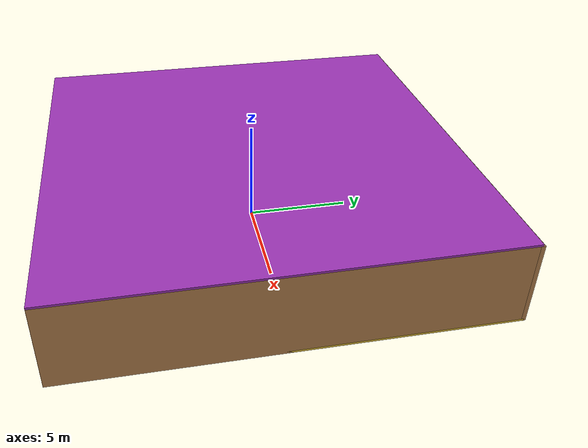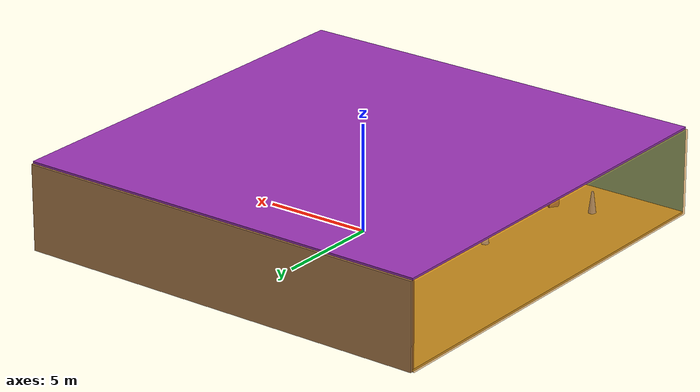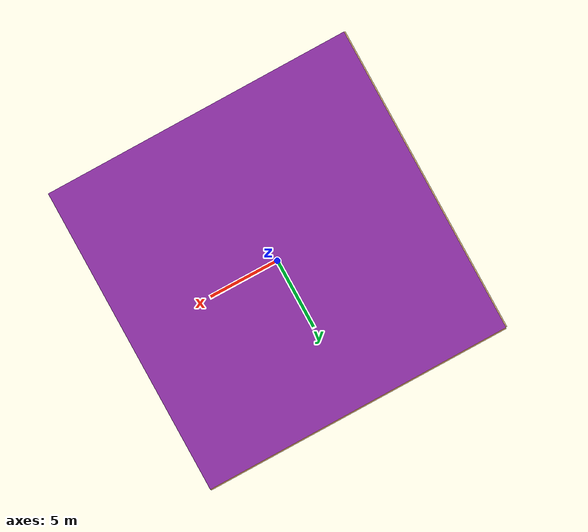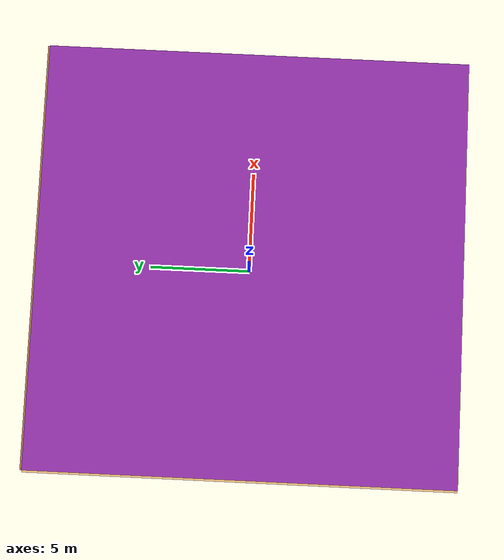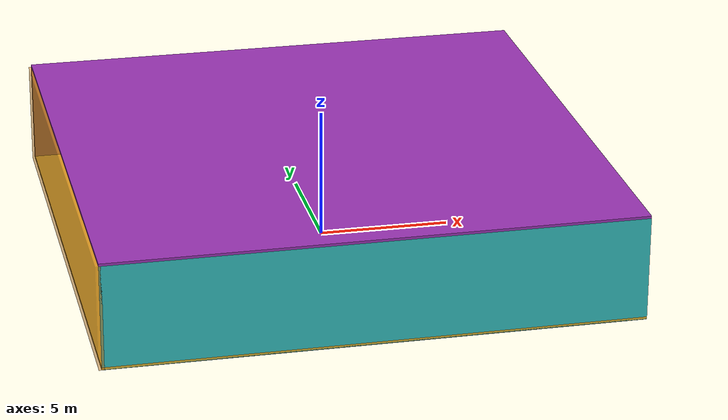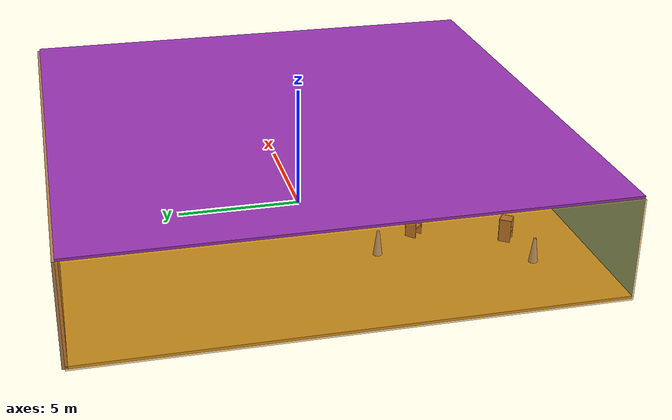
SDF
<sdf version="1.4">
 <world name="default">
  <physics type="ode">
   <max_step_size>0.001</max_step_size>
   <real_time_factor>1</real_time_factor>
   <real_time_update_rate>1000</real_time_update_rate>
   <gravity>0 0 -9.8</gravity>
  </physics>
  <scene><ambient>0.4 0.4 0.4 1</ambient><background>0.7 0.7 0.7 1</background><shadows>1</shadows></scene>
  <model name="Surrounding">
   <static>1</static>
   <link name="Ceiling">
    <collision name="Ceiling_Collision"><geometry><box><size>20 20 0.1</size></box></geometry></collision>
    <visual name="Ceiling_Visual">
     <geometry><box><size>20 20 0.1</size></box></geometry>
     <material>
      <script><uri>file://media/materials/scripts/gazebo.material</uri><name>Gazebo/Purple</name></script>
     </material>
    </visual>
    <pose>0 0 4.05 0 0 0</pose>
   </link>
   <link name="Wall_South">
    <collision name="Wall_South_Collision">
     <geometry><box><size>20 0 4</size></box></geometry>
     <pose>0 0 2 0 -0 0</pose>
    </collision>
    <visual name="Wall_South_Visual">
     <pose>0 0 2 0 -0 0</pose>
     <geometry><box><size>20 0 4</size></box></geometry>
     <material>
      <script><uri>file://media/materials/scripts/gazebo.material</uri><name>Gazebo/TurquoiseGlow</name></script>
     </material>
    </visual>
    <velocity_decay><linear>0</linear><angular>0</angular></velocity_decay>
    <pose>0 -10 0 0 -0 0</pose>
   </link>
   <link name="Wall_East">
    <collision name="Wall_21_Collision">
     <geometry><box><size>20 0 4</size></box></geometry>
     <pose>0 0 2 0 -0 0</pose>
    </collision>
    <visual name="Wall_21_Visual">
     <pose>0 0 2 0 -0 0</pose>
     <geometry><box><size>20 0 4</size></box></geometry>
     <material>
      <script><uri>file://media/materials/scripts/gazebo.material</uri><name>Gazebo/WoodPallet</name></script>
     </material>
    </visual>
    <velocity_decay><linear>0</linear><angular>0</angular></velocity_decay>
    <pose>10 0 0 0 -0 1.5708</pose>
   </link>
   <link name="Wall_North">
    <collision name="Wall_22_Collision">
     <geometry><box><size>20 0.2 4</size></box></geometry>
     <pose>0 0 2 0 -0 0</pose>
    </collision>
    <visual name="Wall_22_Visual">
     <pose>0 0 2 0 -0 0</pose>
     <geometry><box><size>20 0.2 4</size></box></geometry>
     <material>
      <script><uri>file://media/materials/scripts/gazebo.material</uri><name>Gazebo/WoodPallet</name></script>
     </material>
    </visual>
    <velocity_decay><linear>0</linear><angular>0</angular></velocity_decay>
    <pose>0 10 0 0 -0 0</pose>
   </link>
   <link name="Wall_West">
    <collision name="Wall_23_Collision">
     <geometry><box><size>20 0.2 4</size></box></geometry>
     <pose>0 0 2 0 -0 0</pose>
    </collision>
    <visual name="Wall_23_Visual">
     <pose>0 0 2 0 -0 0</pose>
     <geometry><box><size>20 0.2 4</size></box></geometry>
     <material>
      <script>
       <uri>file://media/materials/scripts/gazebo.material</uri>
       <name>Gazebo/OrangeTransparent</name>
      </script>
     </material>
    </visual>
    <velocity_decay><linear>0</linear><angular>0</angular></velocity_decay>
    <pose>-10 0 0 0 0 -1.5708</pose>
   </link>
   <link name="Ground_link">
    <collision name="collision">
     <pose>0 0 .05 0 -0 0</pose>
     <geometry><box><size>20 20 0.1</size></box></geometry>
    </collision>
    <visual name="visual">
     <pose>0 0 .05 0 -0 0</pose>
     <geometry><box><size>20 20 0.1</size></box></geometry>
     <material>
      <script><uri>file://media/materials/scripts/gazebo.material</uri><name>Gazebo/Gold</name></script>
     </material>
    </visual>
   </link>
   <static>1</static>
  </model>
  <spherical_coordinates>
   <surface_model>EARTH_WGS84</surface_model>
   <latitude_deg>0</latitude_deg>
   <longitude_deg>0</longitude_deg>
   <elevation>0</elevation>
   <heading_deg>0</heading_deg>
  </spherical_coordinates>
  <light name="lightball_0" type="diffuse">
   <diffuse>0.8 0.8 0.8 1</diffuse>
   <specular>0.2 0.2 0.2 1</specular>
   <attenuation>
    <range>100</range>
    <constant>0.7</constant>
    <linear>0.01</linear>
    <quadratic>0.001</quadratic>
   </attenuation>
   <direction>-0.5 0.1 -0.9</direction>
   <pose>4.04821902572 -2.63453976547 2.31189280386 0 0 0</pose>
  </light>
  <light name="lightball_1" type="diffuse">
   <diffuse>0.8 0.8 0.8 1</diffuse>
   <specular>0.2 0.2 0.2 1</specular>
   <attenuation>
    <range>100</range>
    <constant>0.7</constant>
    <linear>0.01</linear>
    <quadratic>0.001</quadratic>
   </attenuation>
   <direction>-0.5 0.1 -0.9</direction>
   <pose>-1.2219172236 -0.239753297683 1.66685198156 0 0 0</pose>
  </light>
  <light name="lightball_2" type="diffuse">
   <diffuse>0.8 0.8 0.8 1</diffuse>
   <specular>0.2 0.2 0.2 1</specular>
   <attenuation>
    <range>100</range>
    <constant>0.7</constant>
    <linear>0.01</linear>
    <quadratic>0.001</quadratic>
   </attenuation>
   <direction>-0.5 0.1 -0.9</direction>
   <pose>9.35040268868 4.16610051104 2.0220557888 0 0 0</pose>
  </light>
  <light name="lightball_3" type="diffuse">
   <diffuse>0.8 0.8 0.8 1</diffuse>
   <specular>0.2 0.2 0.2 1</specular>
   <attenuation>
    <range>100</range>
    <constant>0.7</constant>
    <linear>0.01</linear>
    <quadratic>0.001</quadratic>
   </attenuation>
   <direction>-0.5 0.1 -0.9</direction>
   <pose>9.2764072846 -2.67377924329 2.56706670838 0 0 0</pose>
  </light>
  <light name="lightball_4" type="diffuse">
   <diffuse>0.8 0.8 0.8 1</diffuse>
   <specular>0.2 0.2 0.2 1</specular>
   <attenuation>
    <range>100</range>
    <constant>0.7</constant>
    <linear>0.01</linear>
    <quadratic>0.001</quadratic>
   </attenuation>
   <direction>-0.5 0.1 -0.9</direction>
   <pose>-3.53180964956 -5.38175230271 0.835353661404 0 0 0</pose>
  </light>
  <light name="lightball_5" type="diffuse">
   <diffuse>0.8 0.8 0.8 1</diffuse>
   <specular>0.2 0.2 0.2 1</specular>
   <attenuation>
    <range>100</range>
    <constant>0.7</constant>
    <linear>0.01</linear>
    <quadratic>0.001</quadratic>
   </attenuation>
   <direction>-0.5 0.1 -0.9</direction>
   <pose>1.35257157021 -1.18257779748 2.31247277917 0 0 0</pose>
  </light>
  <light name="lightball_6" type="diffuse">
   <diffuse>0.8 0.8 0.8 1</diffuse>
   <specular>0.2 0.2 0.2 1</specular>
   <attenuation>
    <range>100</range>
    <constant>0.7</constant>
    <linear>0.01</linear>
    <quadratic>0.001</quadratic>
   </attenuation>
   <direction>-0.5 0.1 -0.9</direction>
   <pose>-5.2923633856 -6.05267752653 2.88112865191 0 0 0</pose>
  </light>
  <light name="lightball_7" type="diffuse">
   <diffuse>0.8 0.8 0.8 1</diffuse>
   <specular>0.2 0.2 0.2 1</specular>
   <attenuation>
    <range>100</range>
    <constant>0.7</constant>
    <linear>0.01</linear>
    <quadratic>0.001</quadratic>
   </attenuation>
   <direction>-0.5 0.1 -0.9</direction>
   <pose>5.33382861241 6.66920526258 1.56528382241 0 0 0</pose>
  </light>
  <light name="lightball_8" type="diffuse">
   <diffuse>0.8 0.8 0.8 1</diffuse>
   <specular>0.2 0.2 0.2 1</specular>
   <attenuation>
    <range>100</range>
    <constant>0.7</constant>
    <linear>0.01</linear>
    <quadratic>0.001</quadratic>
   </attenuation>
   <direction>-0.5 0.1 -0.9</direction>
   <pose>-1.43364262581 -5.6013904037 2.02069461912 0 0 0</pose>
  </light>
  <include>
   <uri>model://construction_cone</uri>
   <pose>-6.87850328306 -7.52722988618 0 0 0 1.36059005973</pose>
  </include>
  <include><uri>model://cabinet</uri><pose>-5.00603640991 -7.16477968138 0 0 0 0.9809337298</pose></include>
  <include><uri>model://cabinet</uri><pose>-3.88446467931 -3.76260872999 0 0 0 0.760789165965</pose></include>
  <include>
   <uri>model://construction_cone</uri>
   <pose>-5.07625319904 -1.95677869401 0 0 0 2.9346229822</pose>
  </include>
  <include>
   <uri>model://textured_shapes</uri>
   <pose>0.846738938601 -3.97207260988 0 0 0 0.0412978296447</pose>
  </include>
  <include><uri>model://cabinet</uri><pose>2.03297201191 7.53246665549 0 0 0 1.7002822776</pose></include>
 </world>
</sdf>

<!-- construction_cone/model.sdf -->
<sdf version="1.5">
  <model name="Construction Cone">
    <link name="link">
      <collision name="collision">
        <geometry>
          <mesh>
            <scale>10 10 10</scale>
            <uri>file://isr-testbed/construction_cone/meshes/construction_cone.dae</uri>
          </mesh>
        </geometry>
      </collision>
      <visual name="visual">
        <geometry>
          <mesh>
            <scale>10 10 10</scale>
            <uri>file://isr-testbed/construction_cone/meshes/construction_cone.dae</uri>
          </mesh>
        </geometry>
      </visual>
    </link>
  </model>
</sdf>

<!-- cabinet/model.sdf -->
<sdf version="1.5">
  <model name="cabinet">
    <static>true</static>
    <link name="cabinet_bottom_plate">
      <inertial>
        <pose>0 0 -1 0 0 0</pose>
        <inertia>
          <ixx>2.050000</ixx>
          <ixy>0</ixy>
          <ixz>0</ixz>
          <iyy>2.050000</iyy>
          <iyz>0</iyz>
          <izz>2.050000</izz>
        </inertia>
        <mass>25.000000</mass>
      </inertial>
      <collision name="cabinet_bottom_plate_geom">
        <pose>0 0 0.010000 0 0 0</pose>
        <geometry>
          <box>
            <size>0.450000 0.450000 0.020000</size>
          </box>
        </geometry>
      </collision>
      <visual name="cabinet_bottom_plate_geom_visual">
        <pose>0 0 0.010000 0 0 0</pose>
        <geometry>
          <box>
            <size>0.450000 0.450000 0.020000</size>
          </box>
        </geometry>
        <material>
          <script>
            <uri>model://media/materials/scripts/gazebo.material</uri>
            <name>Gazebo/Wood</name>
          </script>
        </material>
      </visual>
      <collision name="cabinet_bottom_plate_geom_cabinet_back_plate">
        <pose>0.235000 0 0.510000 0 0 0</pose>
        <geometry>
          <box>
            <size>0.020000 0.450000 1.020000</size>
          </box>
        </geometry>
      </collision>
      <visual name="cabinet_bottom_plate_geom_cabinet_back_plate_visual">
        <pose>0.235000 0 0.510000 0 0 0</pose>
        <geometry>
          <box>
            <size>0.020000 0.450000 1.020000</size>
          </box>
        </geometry>
        <material>
          <script>
            <uri>model://media/materials/scripts/gazebo.material</uri>
            <name>Gazebo/Wood</name>
          </script>
        </material>
      </visual>
      <collision name="cabinet_bottom_plate_geom_cabinet_left_plate">
        <pose>0 0.235000 0.510000 0 0 0</pose>
        <geometry>
          <box>
            <size>0.450000 0.020000 1.020000</size>
          </box>
        </geometry>
      </collision>
      <visual name="cabinet_bottom_plate_geom_cabinet_left_plate_visual">
        <pose>0 0.235000 0.510000 0 0 0</pose>
        <geometry>
          <box>
            <size>0.450000 0.020000 1.020000</size>
          </box>
        </geometry>
        <material>
          <script>
            <uri>model://media/materials/scripts/gazebo.material</uri>
            <name>Gazebo/Wood</name>
          </script>
        </material>
      </visual>
      <collision name="cabinet_bottom_plate_geom_cabinet_middle_plate">
        <pose>0 0 0.510000 0 0 0</pose>
        <geometry>
          <box>
            <size>0.450000 0.450000 0.020000</size>
          </box>
        </geometry>
      </collision>
      <visual name="cabinet_bottom_plate_geom_cabinet_middle_plate_visual">
        <pose>0 0 0.510000 0 0 0</pose>
        <geometry>
          <box>
            <size>0.450000 0.450000 0.020000</size>
          </box>
        </geometry>
        <material>
          <script>
            <uri>model://media/materials/scripts/gazebo.material</uri>
            <name>Gazebo/Wood</name>
          </script>
        </material>
      </visual>
      <collision name="cabinet_bottom_plate_geom_cabinet_right_plate">
        <pose>0 -0.235000 0.510000 0 0 0</pose>
        <geometry>
          <box>
            <size>0.450000 0.020000 1.020000</size>
          </box>
        </geometry>
      </collision>
      <visual name="cabinet_bottom_plate_geom_cabinet_right_plate_visual">
        <pose>0 -0.235000 0.510000 0 0 0</pose>
        <geometry>
          <box>
            <size>0.450000 0.020000 1.020000</size>
          </box>
        </geometry>
        <material>
          <script>
            <uri>model://media/materials/scripts/gazebo.material</uri>
            <name>Gazebo/Wood</name>
          </script>
        </material>
      </visual>
      <collision name="cabinet_bottom_plate_geom_cabinet_top_plate">
        <pose>0 0 1.010000 0 0 0</pose>
        <geometry>
          <box>
            <size>0.450000 0.450000 0.020000</size>
          </box>
        </geometry>
      </collision>
      <visual name="cabinet_bottom_plate_geom_cabinet_top_plate_visual">
        <pose>0 0 1.010000 0 0 0</pose>
        <geometry>
          <box>
            <size>0.450000 0.450000 0.020000</size>
          </box>
        </geometry>
        <material>
          <script>
            <uri>model://media/materials/scripts/gazebo.material</uri>
            <name>Gazebo/Wood</name>
          </script>
        </material>
      </visual>
    </link>
  </model>
</sdf>

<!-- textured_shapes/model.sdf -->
<sdf version="1.6">
  <model name="textured_shapes">
    <pose>0 0 0.5 0 0 0</pose>
    <link name="box">
      <pose>0 -1.5 0 0 0 0</pose>
      <collision name="collision">
        <geometry>
          <box>
            <size>1 1 1</size>
          </box>
        </geometry>
      </collision>
      <visual name="visual">
        <geometry>
          <box>
            <size>1 1 1</size>
          </box>
        </geometry>
        <material>
          <script>
            <uri>model://../model_source/models/textured_shapes/materials/scripts</uri>
            <uri>model://../model_source/models/textured_shapes/materials/textures</uri>
            <name>TexturedShape/Squares</name>
          </script>
        </material>
      </visual>
    </link>
    <link name="sphere">
      <collision name="collision">
        <geometry>
          <sphere>
            <radius>0.5</radius>
          </sphere>
        </geometry>
      </collision>
      <visual name="visual">
        <geometry>
          <sphere>
            <radius>0.5</radius>
          </sphere>
        </geometry>
        <material>
          <script>
            <uri>model://../model_source/models/textured_shapes/materials/scripts</uri>
            <uri>model://../model_source/models/textured_shapes/materials/textures</uri>
            <name>TexturedShape/Squares</name>
          </script>
        </material>
      </visual>
    </link>
    <link name="cylinder">
      <pose>0 1.5 0 0 0 0</pose>
      <collision name="collision">
        <geometry>
          <cylinder>
            <radius>0.5</radius>
            <length>1</length>
          </cylinder>
        </geometry>
      </collision>
      <visual name="visual">
        <geometry>
          <cylinder>
            <radius>0.5</radius>
            <length>1</length>
          </cylinder>
        </geometry>
        <material>
          <script>
            <uri>model://../model_source/models/textured_shapes/materials/scripts</uri>
            <uri>model://../model_source/models/textured_shapes/materials/textures</uri>
            <name>TexturedShape/Squares</name>
          </script>
        </material>
      </visual>
    </link>
  </model>
</sdf>
